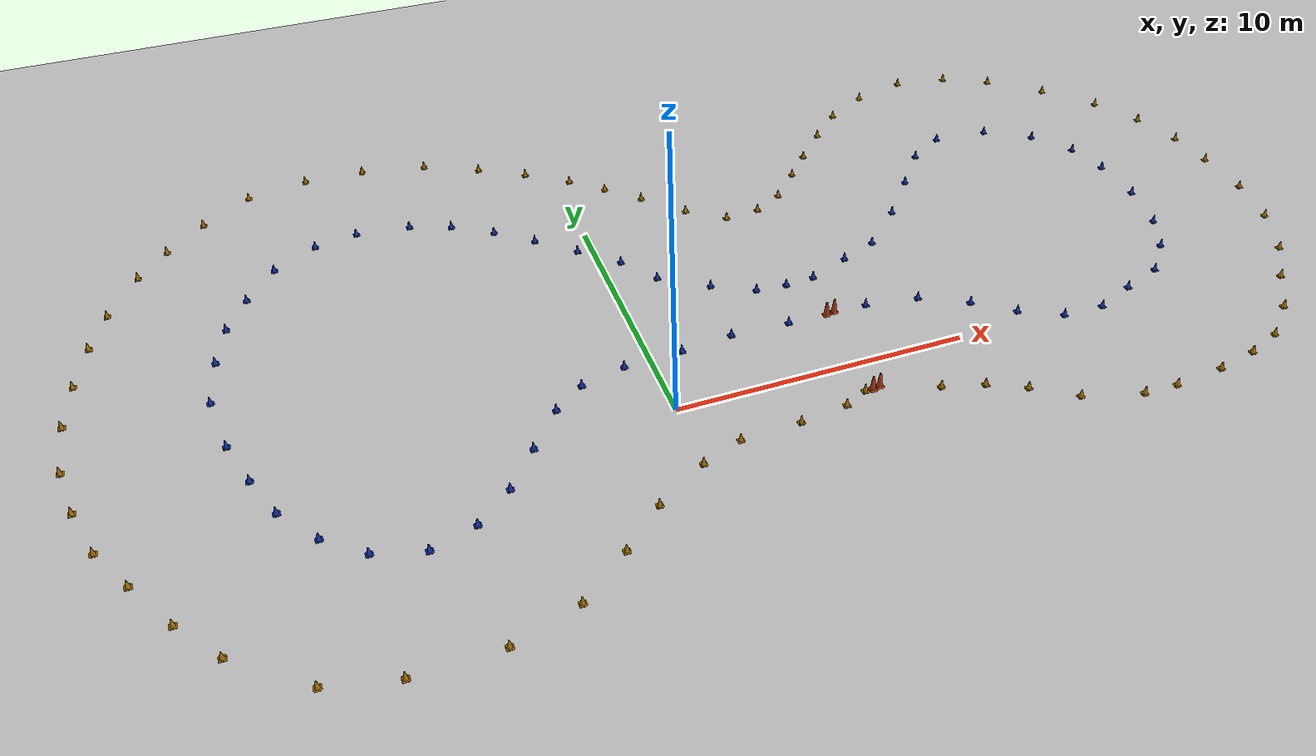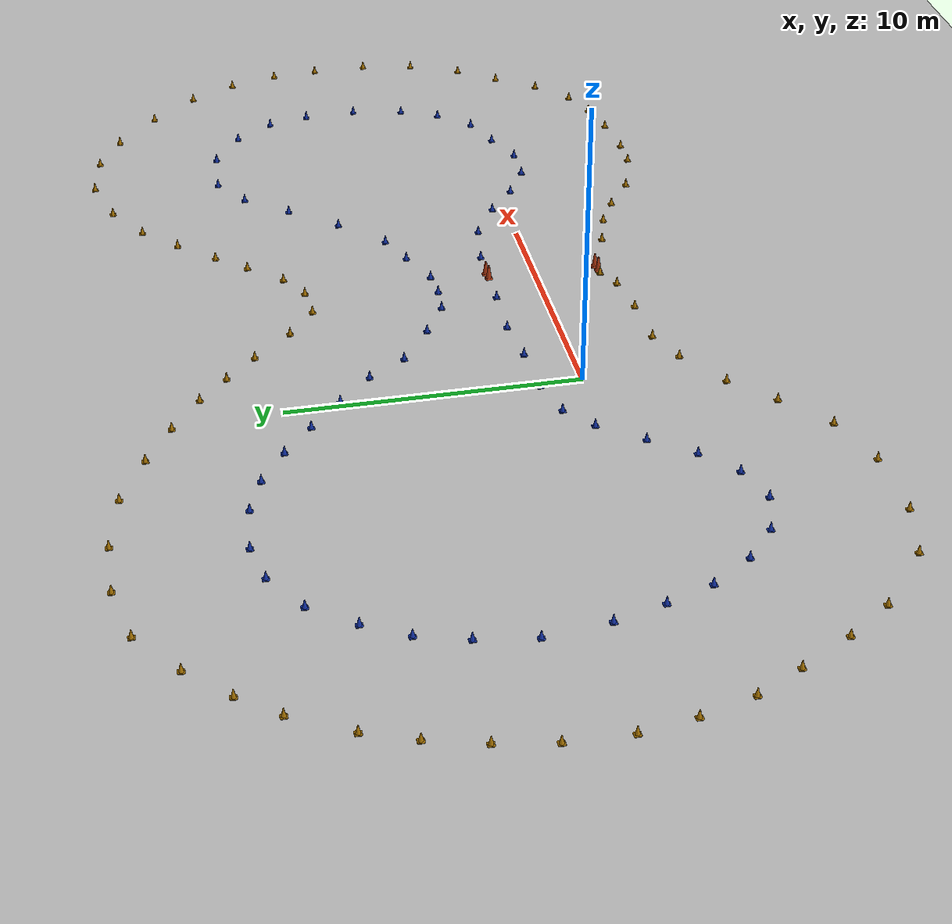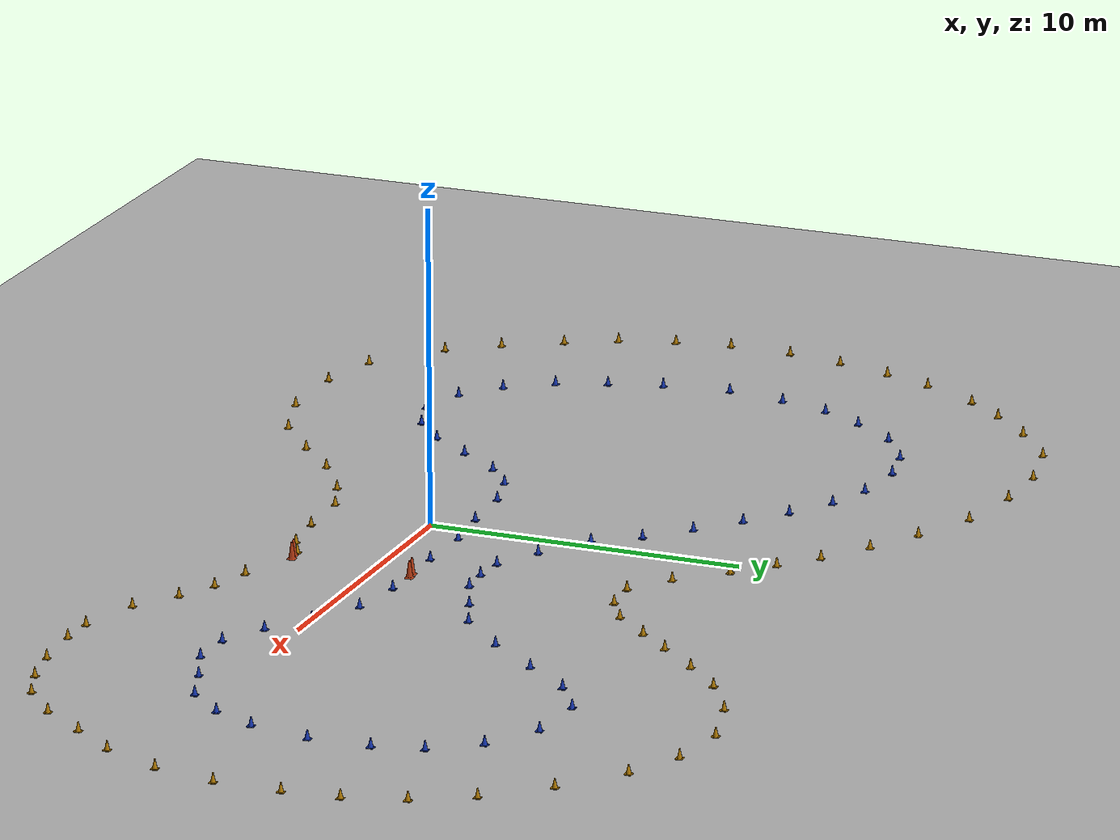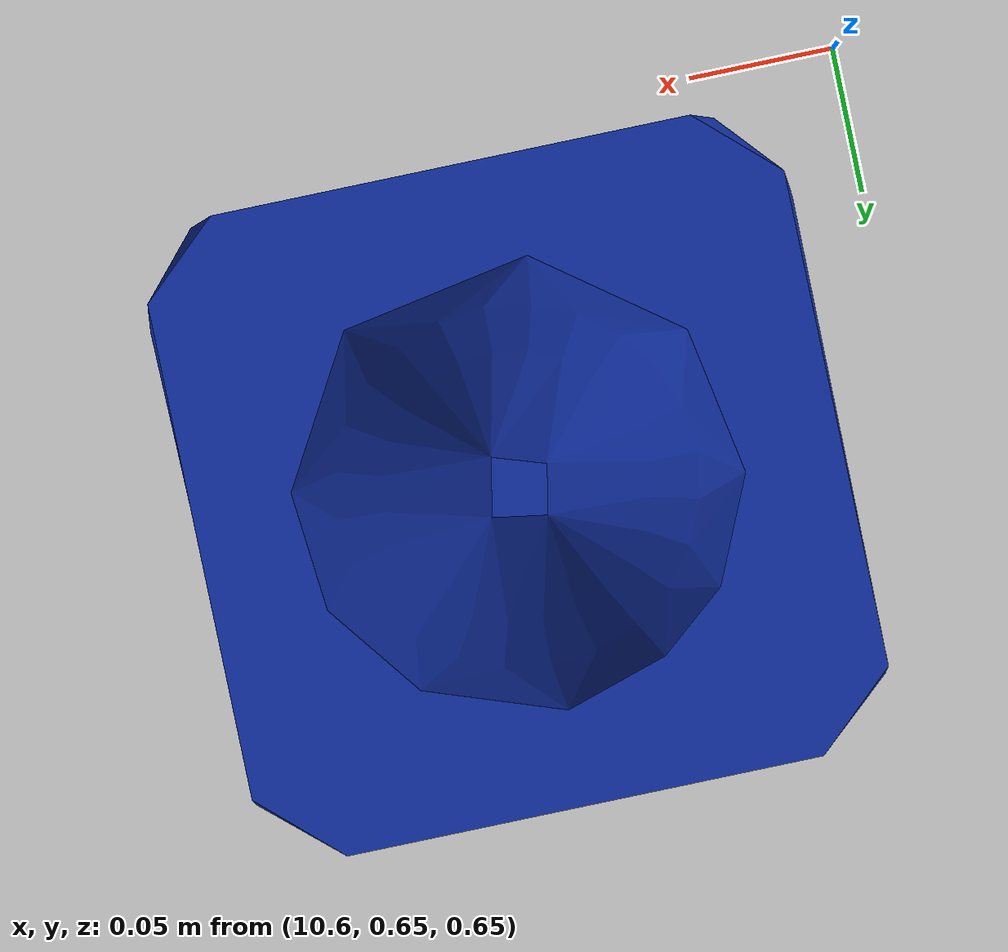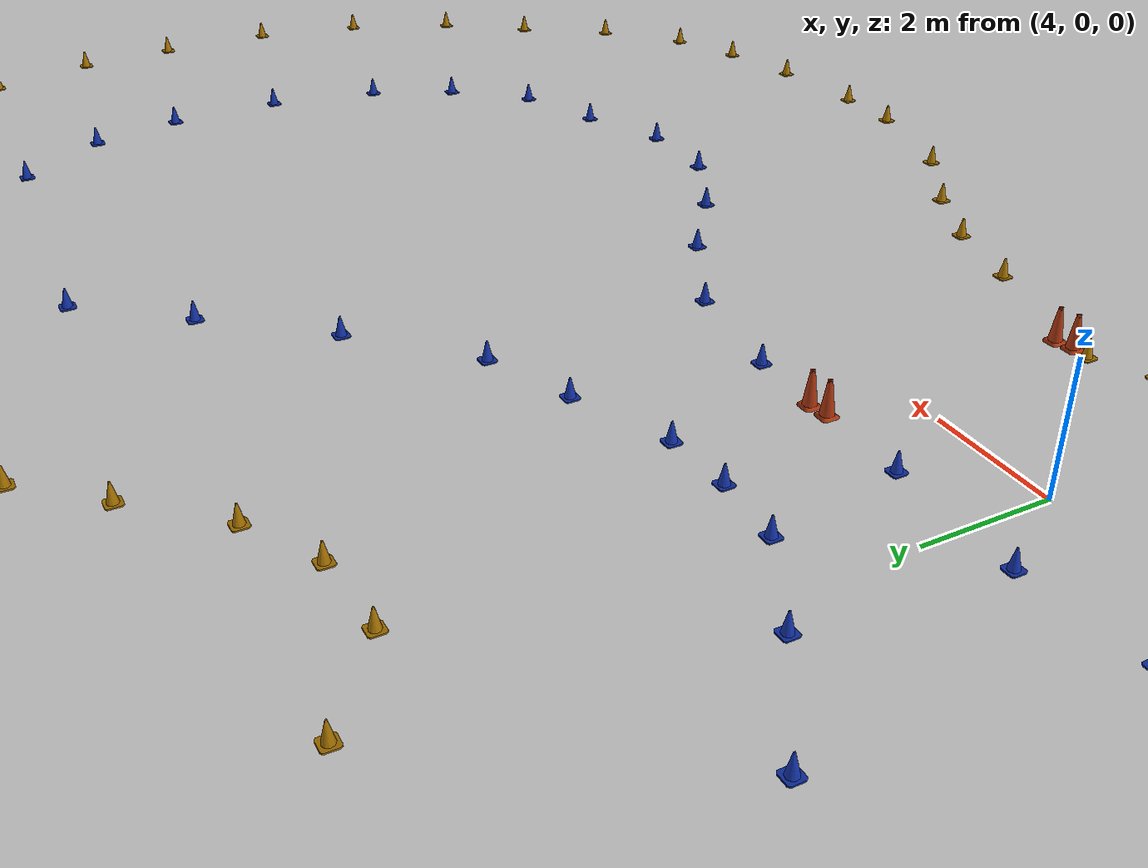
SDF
<sdf version='1.6'>
  <world name='peanut'>
    <gui fullscreen='0'>
      <camera name='user_camera'>
        <pose frame=''>-40 40 20 0 0.667643 -1</pose>
        <view_controller>orbit</view_controller>
        <projection_type>perspective</projection_type>
      </camera>
    </gui>

    <!-- WORLD SETTINGS -->
    <scene>
      <ambient>1.0 1.0 1.0 1.0</ambient>
      <shadows>false</shadows>
    </scene>

    <spherical_coordinates>
      <heading_deg>180</heading_deg>

      <!-- Appleton Tower coordinates -->
      <latitude_deg>-27.690733</latitude_deg>
      <longitude_deg>152.656715</longitude_deg>
    </spherical_coordinates>

    <light name='sun' type='directional'>
      <cast_shadows>1</cast_shadows>
      <pose frame=''>0 0 10 0 -0 0</pose>
      <diffuse>0.8 0.8 0.8 1</diffuse>
      <specular>0.1 0.1 0.1 1</specular>
      <attenuation>
        <range>1000</range>
        <constant>0.9</constant>
        <linear>0.01</linear>
        <quadratic>0.001</quadratic>
      </attenuation>
      <direction>-0.5 0.5 -1</direction>
    </light>

    <!-- MODELS -->
    <include>
      <uri>model://ground_plane</uri>
      <pose>0.0 0.0 0.0 0 0 0</pose>
    </include>

    <include>
      <uri>model://peanut</uri>
      <pose>0 0 0.5 0 0 0</pose>
    </include>

  </world>
</sdf>

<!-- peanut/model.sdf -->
<sdf version='1.6'>
  <model name='track'>

    <include>
      <pose>4.624631688875545 1.9405307217348955 0.15 0 0 0</pose>
      <uri>model://blue_cone</uri>
      <name>blue_cone_0</name>

      <covariance x="0.000196" y="0.000196" xy="0.0"/>

    </include>

    <include>
      <pose>2.626432609214784 2.00763114521312 0.15 0 0 0</pose>
      <uri>model://blue_cone</uri>
      <name>blue_cone_1</name>

      <covariance x="0.000196" y="0.000196" xy="0.0"/>

    </include>

    <include>
      <pose>0.8573233278844401 1.826582293937786 0.15 0 0 0</pose>
      <uri>model://blue_cone</uri>
      <name>blue_cone_2</name>

      <covariance x="0.000196" y="0.000196" xy="0.0"/>

    </include>

    <include>
      <pose>-1.112031282932214 1.7334566896506296 0.15 0 0 0</pose>
      <uri>model://blue_cone</uri>
      <name>blue_cone_3</name>

      <covariance x="0.000196" y="0.000196" xy="0.0"/>

    </include>

    <include>
      <pose>-2.621188015421736 1.3533588253447526 0.15 0 0 0</pose>
      <uri>model://blue_cone</uri>
      <name>blue_cone_4</name>

      <covariance x="0.000196" y="0.000196" xy="0.0"/>

    </include>

    <include>
      <pose>-3.6646865674613447 0.5391368630523501 0.15 0 0 0</pose>
      <uri>model://blue_cone</uri>
      <name>blue_cone_5</name>

      <covariance x="0.000196" y="0.000196" xy="0.0"/>

    </include>

    <include>
      <pose>-4.738033192496301 -0.8466803006738843 0.15 0 0 0</pose>
      <uri>model://blue_cone</uri>
      <name>blue_cone_6</name>

      <covariance x="0.000196" y="0.000196" xy="0.0"/>

    </include>

    <include>
      <pose>-5.785827854104583 -2.207521901485809 0.15 0 0 0</pose>
      <uri>model://blue_cone</uri>
      <name>blue_cone_7</name>

      <covariance x="0.000196" y="0.000196" xy="0.0"/>

    </include>

    <include>
      <pose>-6.965483226611769 -3.2224772580072893 0.15 0 0 0</pose>
      <uri>model://blue_cone</uri>
      <name>blue_cone_8</name>

      <covariance x="0.000196" y="0.000196" xy="0.0"/>

    </include>

    <include>
      <pose>-8.403479735214036 -3.679552794930029 0.15 0 0 0</pose>
      <uri>model://blue_cone</uri>
      <name>blue_cone_9</name>

      <covariance x="0.000196" y="0.000196" xy="0.0"/>

    </include>

    <include>
      <pose>-9.962541703308132 -3.212989083703485 0.15 0 0 0</pose>
      <uri>model://blue_cone</uri>
      <name>blue_cone_10</name>

      <covariance x="0.000198" y="0.000198" xy="0.0"/>

    </include>

    <include>
      <pose>-11.165427023767524 -2.192065305064733 0.15 0 0 0</pose>
      <uri>model://blue_cone</uri>
      <name>blue_cone_11</name>

      <covariance x="0.000196" y="0.000196" xy="0.0"/>

    </include>

    <include>
      <pose>-12.138615899126686 -0.7957521930654935 0.15 0 0 0</pose>
      <uri>model://blue_cone</uri>
      <name>blue_cone_12</name>

      <covariance x="0.000196" y="0.000196" xy="0.0"/>

    </include>

    <include>
      <pose>-12.713417432475692 0.7634000953775564 0.15 0 0 0</pose>
      <uri>model://blue_cone</uri>
      <name>blue_cone_13</name>

      <covariance x="0.000196" y="0.000196" xy="0.0"/>

    </include>

    <include>
      <pose>-13.19921546828624 2.4515489972689486 0.15 0 0 0</pose>
      <uri>model://blue_cone</uri>
      <name>blue_cone_14</name>

      <covariance x="0.000196" y="0.000196" xy="0.0"/>

    </include>

    <include>
      <pose>-13.475829701664416 4.595631547449973 0.15 0 0 0</pose>
      <uri>model://blue_cone</uri>
      <name>blue_cone_15</name>

      <covariance x="0.000196" y="0.000196" xy="0.0"/>

    </include>

    <include>
      <pose>-13.171311430252697 6.489705358426122 0.15 0 0 0</pose>
      <uri>model://blue_cone</uri>
      <name>blue_cone_16</name>

      <covariance x="0.000196" y="0.000196" xy="0.0"/>

    </include>

    <include>
      <pose>-12.700231455557164 8.093780315235415 0.15 0 0 0</pose>
      <uri>model://blue_cone</uri>
      <name>blue_cone_17</name>

      <covariance x="0.000196" y="0.000196" xy="0.0"/>

    </include>

    <include>
      <pose>-11.912279750804782 9.46688187170461 0.15 0 0 0</pose>
      <uri>model://blue_cone</uri>
      <name>blue_cone_18</name>

      <covariance x="0.000196" y="0.000196" xy="0.0"/>

    </include>

    <include>
      <pose>-10.83946684983572 10.851860134060876 0.15 0 0 0</pose>
      <uri>model://blue_cone</uri>
      <name>blue_cone_19</name>

      <covariance x="0.000196" y="0.000196" xy="0.0"/>

    </include>

    <include>
      <pose>-9.328782518766692 11.765670163452018 0.15 0 0 0</pose>
      <uri>model://blue_cone</uri>
      <name>blue_cone_20</name>

      <covariance x="0.000196" y="0.000196" xy="0.0"/>

    </include>

    <include>
      <pose>-7.839582456874299 12.040615721068352 0.15 0 0 0</pose>
      <uri>model://blue_cone</uri>
      <name>blue_cone_21</name>

      <covariance x="0.000196" y="0.000196" xy="0.0"/>

    </include>

    <include>
      <pose>-5.98169072257966 11.821251519572003 0.15 0 0 0</pose>
      <uri>model://blue_cone</uri>
      <name>blue_cone_22</name>

      <covariance x="0.000196" y="0.000196" xy="0.0"/>

    </include>

    <include>
      <pose>-4.568888023928388 11.29129620847962 0.15 0 0 0</pose>
      <uri>model://blue_cone</uri>
      <name>blue_cone_23</name>

      <covariance x="0.000196" y="0.000196" xy="0.0"/>

    </include>

    <include>
      <pose>-3.2188159769702045 10.39248924126546 0.15 0 0 0</pose>
      <uri>model://blue_cone</uri>
      <name>blue_cone_24</name>

      <covariance x="0.000196" y="0.000196" xy="0.0"/>

    </include>

    <include>
      <pose>-1.9878404584206752 9.3700759062441 0.15 0 0 0</pose>
      <uri>model://blue_cone</uri>
      <name>blue_cone_25</name>

      <covariance x="0.000196" y="0.000196" xy="0.0"/>

    </include>

    <include>
      <pose>-0.7400870414615586 8.24331746104806 0.15 0 0 0</pose>
      <uri>model://blue_cone</uri>
      <name>blue_cone_26</name>

      <covariance x="0.000196" y="0.000196" xy="0.0"/>

    </include>

    <include>
      <pose>0.483694433890684 7.082699382531337 0.15 0 0 0</pose>
      <uri>model://blue_cone</uri>
      <name>blue_cone_27</name>

      <covariance x="0.000196" y="0.000196" xy="0.0"/>

    </include>

    <include>
      <pose>1.3692608451230892 5.775505263820311 0.15 0 0 0</pose>
      <uri>model://blue_cone</uri>
      <name>blue_cone_28</name>

      <covariance x="0.000196" y="0.000196" xy="0.0"/>

    </include>

    <include>
      <pose>2.924095647598875 4.70652161806575 0.15 0 0 0</pose>
      <uri>model://blue_cone</uri>
      <name>blue_cone_29</name>

      <covariance x="0.000196" y="0.000196" xy="0.0"/>

    </include>

    <include>
      <pose>4.294927303708031 3.941512680310528 0.15 0 0 0</pose>
      <uri>model://blue_cone</uri>
      <name>blue_cone_30</name>

      <covariance x="0.000196" y="0.000196" xy="0.0"/>

    </include>

    <include>
      <pose>5.352331093555156 3.854981632602374 0.15 0 0 0</pose>
      <uri>model://blue_cone</uri>
      <name>blue_cone_31</name>

      <covariance x="0.000196" y="0.000196" xy="0.0"/>

    </include>

    <include>
      <pose>6.382724861731829 3.9252213159771143 0.15 0 0 0</pose>
      <uri>model://blue_cone</uri>
      <name>blue_cone_32</name>

      <covariance x="0.000196" y="0.000196" xy="0.0"/>

    </include>

    <include>
      <pose>7.841265752601872 4.524371206512453 0.15 0 0 0</pose>
      <uri>model://blue_cone</uri>
      <name>blue_cone_33</name>

      <covariance x="0.000196" y="0.000196" xy="0.0"/>

    </include>

    <include>
      <pose>9.161857020719175 5.050184608413412 0.15 0 0 0</pose>
      <uri>model://blue_cone</uri>
      <name>blue_cone_34</name>

      <covariance x="0.000196" y="0.000196" xy="0.0"/>

    </include>

    <include>
      <pose>10.685253228108898 6.52004368097499 0.15 0 0 0</pose>
      <uri>model://blue_cone</uri>
      <name>blue_cone_35</name>

      <covariance x="0.000196" y="0.000196" xy="0.0"/>

    </include>

    <include>
      <pose>12.044279632884198 8.152627085495595 0.15 0 0 0</pose>
      <uri>model://blue_cone</uri>
      <name>blue_cone_36</name>

      <covariance x="0.000196" y="0.000196" xy="0.0"/>

    </include>

    <include>
      <pose>13.25010428481547 9.633086101382773 0.15 0 0 0</pose>
      <uri>model://blue_cone</uri>
      <name>blue_cone_37</name>

      <covariance x="0.000196" y="0.000196" xy="0.0"/>

    </include>

    <include>
      <pose>14.616432878989052 10.471529055508414 0.15 0 0 0</pose>
      <uri>model://blue_cone</uri>
      <name>blue_cone_38</name>

      <covariance x="0.000196" y="0.000196" xy="0.0"/>

    </include>

    <include>
      <pose>16.63663429663179 10.30247568487576 0.15 0 0 0</pose>
      <uri>model://blue_cone</uri>
      <name>blue_cone_39</name>

      <covariance x="0.000196" y="0.000196" xy="0.0"/>

    </include>

    <include>
      <pose>18.207959651607062 9.286948681592085 0.15 0 0 0</pose>
      <uri>model://blue_cone</uri>
      <name>blue_cone_40</name>

      <covariance x="0.000196" y="0.000196" xy="0.0"/>

    </include>

    <include>
      <pose>19.19237253648675 7.902201244068864 0.15 0 0 0</pose>
      <uri>model://blue_cone</uri>
      <name>blue_cone_41</name>

      <covariance x="0.000196" y="0.000196" xy="0.0"/>

    </include>

    <include>
      <pose>19.56128698194828 6.415916236691957 0.15 0 0 0</pose>
      <uri>model://blue_cone</uri>
      <name>blue_cone_42</name>

      <covariance x="0.000196" y="0.000196" xy="0.0"/>

    </include>

    <include>
      <pose>19.63259821066259 4.524184126583675 0.15 0 0 0</pose>
      <uri>model://blue_cone</uri>
      <name>blue_cone_43</name>

      <covariance x="0.000196" y="0.000196" xy="0.0"/>

    </include>

    <include>
      <pose>19.286562021135964 2.6571186765645938 0.15 0 0 0</pose>
      <uri>model://blue_cone</uri>
      <name>blue_cone_44</name>

      <covariance x="0.000196" y="0.000196" xy="0.0"/>

    </include>

    <include>
      <pose>18.64400171131068 1.298107313172245 0.15 0 0 0</pose>
      <uri>model://blue_cone</uri>
      <name>blue_cone_45</name>

      <covariance x="0.000196" y="0.000196" xy="0.0"/>

    </include>

    <include>
      <pose>17.613182187959865 0.1660765118671262 0.15 0 0 0</pose>
      <uri>model://blue_cone</uri>
      <name>blue_cone_46</name>

      <covariance x="0.000196" y="0.000196" xy="0.0"/>

    </include>

    <include>
      <pose>16.165041519032624 -0.3664045198231451 0.15 0 0 0</pose>
      <uri>model://blue_cone</uri>
      <name>blue_cone_47</name>

      <covariance x="0.000196" y="0.000196" xy="0.0"/>

    </include>

    <include>
      <pose>14.765943146180987 -0.9460611044904712 0.15 0 0 0</pose>
      <uri>model://blue_cone</uri>
      <name>blue_cone_48</name>

      <covariance x="0.000196" y="0.000196" xy="0.0"/>

    </include>

    <include>
      <pose>13.329072501905651 -0.9084122957697698 0.15 0 0 0</pose>
      <uri>model://blue_cone</uri>
      <name>blue_cone_49</name>

      <covariance x="0.000196" y="0.000196" xy="0.0"/>

    </include>

    <include>
      <pose>11.96966555166994 -0.1801536578881954 0.15 0 0 0</pose>
      <uri>model://blue_cone</uri>
      <name>blue_cone_50</name>

      <covariance x="0.000196" y="0.000196" xy="0.0"/>

    </include>

    <include>
      <pose>10.73646052745471 0.7744076044947217 0.15 0 0 0</pose>
      <uri>model://blue_cone</uri>
      <name>blue_cone_51</name>

      <covariance x="0.000196" y="0.000196" xy="0.0"/>

    </include>

    <include>
      <pose>9.206290948682328 1.6272651346632518 0.15 0 0 0</pose>
      <uri>model://blue_cone</uri>
      <name>blue_cone_52</name>

      <covariance x="0.000196" y="0.000196" xy="0.0"/>

    </include>

    <include>
      <pose>7.401248096290233 1.9111549514525064 0.15 0 0 0</pose>
      <uri>model://blue_cone</uri>
      <name>blue_cone_53</name>

      <covariance x="0.000196" y="0.000196" xy="0.0"/>

    </include>

    <include>
      <pose>4.705146821928112 -2.3756344106621983 0.15 0 0 0</pose>
      <uri>model://yellow_cone</uri>
      <name>yellow_cone_54</name>

      <covariance x="0.000196" y="0.000196" xy="0.0"/>

    </include>

    <include>
      <pose>3.09902094703056 -2.581822998619669 0.15 0 0 0</pose>
      <uri>model://yellow_cone</uri>
      <name>yellow_cone_55</name>

      <covariance x="0.000196" y="0.000196" xy="0.0"/>

    </include>

    <include>
      <pose>1.1094121724149195 -2.656558252294417 0.15 0 0 0</pose>
      <uri>model://yellow_cone</uri>
      <name>yellow_cone_56</name>

      <covariance x="0.000196" y="0.000196" xy="0.0"/>

    </include>

    <include>
      <pose>-0.2710523874502893 -3.194019267386174 0.15 0 0 0</pose>
      <uri>model://yellow_cone</uri>
      <name>yellow_cone_57</name>

      <covariance x="0.000196" y="0.000196" xy="0.0"/>

    </include>

    <include>
      <pose>-2.001525557151355 -4.298521657624353 0.15 0 0 0</pose>
      <uri>model://yellow_cone</uri>
      <name>yellow_cone_58</name>

      <covariance x="0.000196" y="0.000196" xy="0.0"/>

    </include>

    <include>
      <pose>-3.392637934561761 -5.586259677537774 0.15 0 0 0</pose>
      <uri>model://yellow_cone</uri>
      <name>yellow_cone_59</name>

      <covariance x="0.000196" y="0.000196" xy="0.0"/>

    </include>

    <include>
      <pose>-5.026610003447421 -6.90543496203549 0.15 0 0 0</pose>
      <uri>model://yellow_cone</uri>
      <name>yellow_cone_60</name>

      <covariance x="0.000196" y="0.000196" xy="0.0"/>

    </include>

    <include>
      <pose>-7.15531642677089 -7.59081773534928 0.15 0 0 0</pose>
      <uri>model://yellow_cone</uri>
      <name>yellow_cone_61</name>

      <covariance x="0.000196" y="0.000196" xy="0.0"/>

    </include>

    <include>
      <pose>-9.806539689217264 -7.6182648804547375 0.15 0 0 0</pose>
      <uri>model://yellow_cone</uri>
      <name>yellow_cone_62</name>

      <covariance x="0.000196" y="0.000196" xy="0.0"/>

    </include>

    <include>
      <pose>-11.891243519272802 -7.111864788183853 0.15 0 0 0</pose>
      <uri>model://yellow_cone</uri>
      <name>yellow_cone_63</name>

      <covariance x="0.000196" y="0.000196" xy="0.0"/>

    </include>

    <include>
      <pose>-14.004174473338615 -5.369214086936336 0.15 0 0 0</pose>
      <uri>model://yellow_cone</uri>
      <name>yellow_cone_64</name>

      <covariance x="0.000196" y="0.000196" xy="0.0"/>

    </include>

    <include>
      <pose>-15.105827161275368 -3.8603822003854713 0.15 0 0 0</pose>
      <uri>model://yellow_cone</uri>
      <name>yellow_cone_65</name>

      <covariance x="0.000196" y="0.000196" xy="0.0"/>

    </include>

    <include>
      <pose>-16.128447489151515 -2.103198086737512 0.15 0 0 0</pose>
      <uri>model://yellow_cone</uri>
      <name>yellow_cone_66</name>

      <covariance x="0.000196" y="0.000196" xy="0.0"/>

    </include>

    <include>
      <pose>-16.970861665094983 -0.5545836573633152 0.15 0 0 0</pose>
      <uri>model://yellow_cone</uri>
      <name>yellow_cone_67</name>

      <covariance x="0.000196" y="0.000196" xy="0.0"/>

    </include>

    <include>
      <pose>-17.50033870253519 1.2220302432295052 0.15 0 0 0</pose>
      <uri>model://yellow_cone</uri>
      <name>yellow_cone_68</name>

      <covariance x="0.000196" y="0.000196" xy="0.0"/>

    </include>

    <include>
      <pose>-17.796263985895415 3.008357531687632 0.15 0 0 0</pose>
      <uri>model://yellow_cone</uri>
      <name>yellow_cone_69</name>

      <covariance x="0.000196" y="0.000196" xy="0.0"/>

    </include>

    <include>
      <pose>-17.740135432169325 5.049606368831388 0.15 0 0 0</pose>
      <uri>model://yellow_cone</uri>
      <name>yellow_cone_70</name>

      <covariance x="0.000196" y="0.000196" xy="0.0"/>

    </include>

    <include>
      <pose>-17.4108762116791 6.872473731885091 0.15 0 0 0</pose>
      <uri>model://yellow_cone</uri>
      <name>yellow_cone_71</name>

      <covariance x="0.000196" y="0.000196" xy="0.0"/>

    </include>

    <include>
      <pose>-16.915117327346554 8.64720796270265 0.15 0 0 0</pose>
      <uri>model://yellow_cone</uri>
      <name>yellow_cone_72</name>

      <covariance x="0.000196" y="0.000196" xy="0.0"/>

    </include>

    <include>
      <pose>-16.302886641199027 10.218211652178384 0.15 0 0 0</pose>
      <uri>model://yellow_cone</uri>
      <name>yellow_cone_73</name>

      <covariance x="0.000196" y="0.000196" xy="0.0"/>

    </include>

    <include>
      <pose>-15.258669621339168 12.05163426975841 0.15 0 0 0</pose>
      <uri>model://yellow_cone</uri>
      <name>yellow_cone_74</name>

      <covariance x="0.000196" y="0.000196" xy="0.0"/>

    </include>

    <include>
      <pose>-14.23389320808069 13.272487062696312 0.15 0 0 0</pose>
      <uri>model://yellow_cone</uri>
      <name>yellow_cone_75</name>

      <covariance x="0.000196" y="0.000196" xy="0.0"/>

    </include>

    <include>
      <pose>-12.901652980660002 14.55047412998042 0.15 0 0 0</pose>
      <uri>model://yellow_cone</uri>
      <name>yellow_cone_76</name>

      <covariance x="0.000196" y="0.000196" xy="0.0"/>

    </include>

    <include>
      <pose>-11.19651297235422 15.768833538738503 0.15 0 0 0</pose>
      <uri>model://yellow_cone</uri>
      <name>yellow_cone_77</name>

      <covariance x="0.000196" y="0.000196" xy="0.0"/>

    </include>

    <include>
      <pose>-9.077558370089696 16.169887947214225 0.15 0 0 0</pose>
      <uri>model://yellow_cone</uri>
      <name>yellow_cone_78</name>

      <covariance x="0.000196" y="0.000196" xy="0.0"/>

    </include>

    <include>
      <pose>-6.96881677928551 16.09129990061983 0.15 0 0 0</pose>
      <uri>model://yellow_cone</uri>
      <name>yellow_cone_79</name>

      <covariance x="0.000196" y="0.000196" xy="0.0"/>

    </include>

    <include>
      <pose>-4.694588493161887 15.617891315665505 0.15 0 0 0</pose>
      <uri>model://yellow_cone</uri>
      <name>yellow_cone_80</name>

      <covariance x="0.000196" y="0.000196" xy="0.0"/>

    </include>

    <include>
      <pose>-2.791687532968256 14.66737981122567 0.15 0 0 0</pose>
      <uri>model://yellow_cone</uri>
      <name>yellow_cone_81</name>

      <covariance x="0.000196" y="0.000196" xy="0.0"/>

    </include>

    <include>
      <pose>-1.2091215008092857 13.702174169531782 0.15 0 0 0</pose>
      <uri>model://yellow_cone</uri>
      <name>yellow_cone_82</name>

      <covariance x="0.000196" y="0.000196" xy="0.0"/>

    </include>

    <include>
      <pose>0.2292019878629633 12.67069892163715 0.15 0 0 0</pose>
      <uri>model://yellow_cone</uri>
      <name>yellow_cone_83</name>

      <covariance x="0.000196" y="0.000196" xy="0.0"/>

    </include>

    <include>
      <pose>1.31351587009695 11.674658925302804 0.15 0 0 0</pose>
      <uri>model://yellow_cone</uri>
      <name>yellow_cone_84</name>

      <covariance x="0.000196" y="0.000196" xy="0.0"/>

    </include>

    <include>
      <pose>2.3971389346059127 10.61476031234839 0.15 0 0 0</pose>
      <uri>model://yellow_cone</uri>
      <name>yellow_cone_85</name>

      <covariance x="0.000196" y="0.000196" xy="0.0"/>

    </include>

    <include>
      <pose>3.6581473539920486 9.263907469410505 0.15 0 0 0</pose>
      <uri>model://yellow_cone</uri>
      <name>yellow_cone_86</name>

      <covariance x="0.000196" y="0.000196" xy="0.0"/>

    </include>

    <include>
      <pose>4.903840554123255 8.318535384961704 0.15 0 0 0</pose>
      <uri>model://yellow_cone</uri>
      <name>yellow_cone_87</name>

      <covariance x="0.000196" y="0.000196" xy="0.0"/>

    </include>

    <include>
      <pose>6.148050241831177 8.40485216455479 0.15 0 0 0</pose>
      <uri>model://yellow_cone</uri>
      <name>yellow_cone_88</name>

      <covariance x="0.000196" y="0.000196" xy="0.0"/>

    </include>

    <include>
      <pose>7.217652052021406 9.005671684359621 0.15 0 0 0</pose>
      <uri>model://yellow_cone</uri>
      <name>yellow_cone_89</name>

      <covariance x="0.000196" y="0.000196" xy="0.0"/>

    </include>

    <include>
      <pose>8.272933752426894 10.142815405309936 0.15 0 0 0</pose>
      <uri>model://yellow_cone</uri>
      <name>yellow_cone_90</name>

      <covariance x="0.000196" y="0.000196" xy="0.0"/>

    </include>

    <include>
      <pose>9.189423755522071 11.168209769159075 0.15 0 0 0</pose>
      <uri>model://yellow_cone</uri>
      <name>yellow_cone_91</name>

      <covariance x="0.000196" y="0.000196" xy="0.0"/>

    </include>

    <include>
      <pose>10.337770639187408 12.405495551596546 0.15 0 0 0</pose>
      <uri>model://yellow_cone</uri>
      <name>yellow_cone_92</name>

      <covariance x="0.000196" y="0.000196" xy="0.0"/>

    </include>

    <include>
      <pose>11.5396207546024 13.558391875187535 0.15 0 0 0</pose>
      <uri>model://yellow_cone</uri>
      <name>yellow_cone_93</name>

      <covariance x="0.000196" y="0.000196" xy="0.0"/>

    </include>

    <include>
      <pose>13.166026259918375 14.502209496722935 0.15 0 0 0</pose>
      <uri>model://yellow_cone</uri>
      <name>yellow_cone_94</name>

      <covariance x="0.000196" y="0.000196" xy="0.0"/>

    </include>

    <include>
      <pose>15.195367738510535 15.018842717392143 0.15 0 0 0</pose>
      <uri>model://yellow_cone</uri>
      <name>yellow_cone_95</name>

      <covariance x="0.000196" y="0.000196" xy="0.0"/>

    </include>

    <include>
      <pose>17.15699718168617 14.695869336782271 0.15 0 0 0</pose>
      <uri>model://yellow_cone</uri>
      <name>yellow_cone_96</name>

      <covariance x="0.000196" y="0.000196" xy="0.0"/>

    </include>

    <include>
      <pose>18.79668087066088 13.820486143931069 0.15 0 0 0</pose>
      <uri>model://yellow_cone</uri>
      <name>yellow_cone_97</name>

      <covariance x="0.000196" y="0.000196" xy="0.0"/>

    </include>

    <include>
      <pose>20.538925919150124 12.32974873593026 0.15 0 0 0</pose>
      <uri>model://yellow_cone</uri>
      <name>yellow_cone_98</name>

      <covariance x="0.000196" y="0.000196" xy="0.0"/>

    </include>

    <include>
      <pose>22.010176639901857 10.647392837888024 0.15 0 0 0</pose>
      <uri>model://yellow_cone</uri>
      <name>yellow_cone_99</name>

      <covariance x="0.000196" y="0.000196" xy="0.0"/>

    </include>

    <include>
      <pose>22.92478123646552 8.96450578639518 0.15 0 0 0</pose>
      <uri>model://yellow_cone</uri>
      <name>yellow_cone_100</name>

      <covariance x="0.000196" y="0.000196" xy="0.0"/>

    </include>

    <include>
      <pose>23.458262708194965 7.185973601132426 0.15 0 0 0</pose>
      <uri>model://yellow_cone</uri>
      <name>yellow_cone_101</name>

      <covariance x="0.000196" y="0.000196" xy="0.0"/>

    </include>

    <include>
      <pose>23.62124505049671 5.4829597425896885 0.15 0 0 0</pose>
      <uri>model://yellow_cone</uri>
      <name>yellow_cone_102</name>

      <covariance x="0.000196" y="0.000196" xy="0.0"/>

    </include>

    <include>
      <pose>23.65727668894056 3.462088859150759 0.15 0 0 0</pose>
      <uri>model://yellow_cone</uri>
      <name>yellow_cone_103</name>

      <covariance x="0.000196" y="0.000196" xy="0.0"/>

    </include>

    <include>
      <pose>23.297311446810493 1.538521543817897 0.15 0 0 0</pose>
      <uri>model://yellow_cone</uri>
      <name>yellow_cone_104</name>

      <covariance x="0.000196" y="0.000196" xy="0.0"/>

    </include>

    <include>
      <pose>22.48496797034196 -0.2949843450156446 0.15 0 0 0</pose>
      <uri>model://yellow_cone</uri>
      <name>yellow_cone_105</name>

      <covariance x="0.000196" y="0.000196" xy="0.0"/>

    </include>

    <include>
      <pose>21.442616731482687 -1.6680771961272407 0.15 0 0 0</pose>
      <uri>model://yellow_cone</uri>
      <name>yellow_cone_106</name>

      <covariance x="0.000196" y="0.000196" xy="0.0"/>

    </include>

    <include>
      <pose>20.421949825778405 -3.0942659806431583 0.15 0 0 0</pose>
      <uri>model://yellow_cone</uri>
      <name>yellow_cone_107</name>

      <covariance x="0.000196" y="0.000196" xy="0.0"/>

    </include>

    <include>
      <pose>19.17901379281598 -4.195823474406415 0.15 0 0 0</pose>
      <uri>model://yellow_cone</uri>
      <name>yellow_cone_108</name>

      <covariance x="0.000196" y="0.000196" xy="0.0"/>

    </include>

    <include>
      <pose>17.937066428836474 -4.681255105910013 0.15 0 0 0</pose>
      <uri>model://yellow_cone</uri>
      <name>yellow_cone_109</name>

      <covariance x="0.000196" y="0.000196" xy="0.0"/>

    </include>

    <include>
      <pose>16.483959178084678 -4.998110094743511 0.15 0 0 0</pose>
      <uri>model://yellow_cone</uri>
      <name>yellow_cone_110</name>

      <covariance x="0.000196" y="0.000196" xy="0.0"/>

    </include>

    <include>
      <pose>14.72085612985176 -5.164413482084297 0.15 0 0 0</pose>
      <uri>model://yellow_cone</uri>
      <name>yellow_cone_111</name>

      <covariance x="0.000196" y="0.000196" xy="0.0"/>

    </include>

    <include>
      <pose>13.550531466734856 -5.134334834783209 0.15 0 0 0</pose>
      <uri>model://yellow_cone</uri>
      <name>yellow_cone_112</name>

      <covariance x="0.000196" y="0.000196" xy="0.0"/>

    </include>

    <include>
      <pose>11.62766255535181 -4.547827399013793 0.15 0 0 0</pose>
      <uri>model://yellow_cone</uri>
      <name>yellow_cone_113</name>

      <covariance x="0.000196" y="0.000196" xy="0.0"/>

    </include>

    <include>
      <pose>10.323058276431327 -3.645541759190806 0.15 0 0 0</pose>
      <uri>model://yellow_cone</uri>
      <name>yellow_cone_114</name>

      <covariance x="0.000196" y="0.000196" xy="0.0"/>

    </include>

    <include>
      <pose>9.153115087081096 -3.033151737469888 0.15 0 0 0</pose>
      <uri>model://yellow_cone</uri>
      <name>yellow_cone_115</name>

      <covariance x="0.000196" y="0.000196" xy="0.0"/>

    </include>

    <include>
      <pose>7.814017958032448 -2.6396771719337635 0.15 0 0 0</pose>
      <uri>model://yellow_cone</uri>
      <name>yellow_cone_116</name>

      <covariance x="0.000196" y="0.000196" xy="0.0"/>

    </include>

    <include>
      <pose>5.518615736547532 -1.975023411044792 0.15 0 0 0</pose>
      <uri>model://yellow_cone</uri>
      <name>yellow_cone_117</name>

      <covariance x="0.000196" y="0.000196" xy="0.0"/>

    </include>

    <include>
      <pose>6.272590004524751 1.97094196416818 0.15 0 0 0</pose>
      <uri>model://big_cone</uri>
      <name>big_cone_118</name>

      <covariance x="0.000196" y="0.000196" xy="0.0"/>

    </include>

    <include>
      <pose>5.980069809311668 1.9246706335416364 0.15 0 0 0</pose>
      <uri>model://big_cone</uri>
      <name>big_cone_119</name>

      <covariance x="0.000196" y="0.000196" xy="0.0"/>

    </include>

    <include>
      <pose>5.777776442588278 -1.9779226563498085 0.15 0 0 0</pose>
      <uri>model://big_cone</uri>
      <name>big_cone_120</name>

      <covariance x="0.000196" y="0.000196" xy="0.0"/>

    </include>

    <include>
      <pose>6.0413906327322 -1.9176899422308424 0.15 0 0 0</pose>
      <uri>model://big_cone</uri>
      <name>big_cone_121</name>

      <covariance x="0.000196" y="0.000196" xy="0.0"/>

    </include>

    <static>0</static>
    <allow_auto_disable>1</allow_auto_disable>
  </model>
</sdf>

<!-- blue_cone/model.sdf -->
<sdf version='1.6'>
  <model name='blue_cone'>
    <link name='link'>
      <pose frame=''>0 0 0 0 0 0</pose>
      <inertial>
        <inertia>
          <ixx>0.0016</ixx>
          <ixy>0</ixy>
          <ixz>0</ixz>
          <iyy>0.0016</iyy>
          <iyz>0</iyz>
          <izz>0.0010</izz>
        </inertia>
        <mass>0.45</mass>
      </inertial>
      <visual name='visual'>
        <geometry>
          <mesh>
            <uri>model://cone_blue.dae</uri>
          </mesh>
        </geometry>
        <cast_shadows>1</cast_shadows>
      </visual>
      <collision name='collision'>
        <max_contacts>3</max_contacts>
        <geometry>
          <mesh>
            <uri>model://cone_blue.dae</uri>
          </mesh>
        </geometry>
      </collision>
    </link>
  </model>
</sdf>

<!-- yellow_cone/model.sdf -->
<sdf version='1.6'>
  <model name='yellow_cone'>
    <link name='link'>
      <pose frame=''>0 0 0 0 0 0</pose>
      <inertial>
        <inertia>
          <ixx>0.0016</ixx>
          <ixy>0</ixy>
          <ixz>0</ixz>
          <iyy>0.0016</iyy>
          <iyz>0</iyz>
          <izz>0.0010</izz>
        </inertia>
        <mass>0.45</mass>
      </inertial>
      <visual name='visual'>
        <geometry>
          <mesh>
            <uri>model://cone_yellow.dae</uri>
          </mesh>
        </geometry>
        <cast_shadows>1</cast_shadows>
      </visual>
      <collision name='collision'>
        <max_contacts>3</max_contacts>
        <geometry>
          <mesh>
            <uri>model://cone_yellow.dae</uri>
          </mesh>
        </geometry>
      </collision>
    </link>
  </model>
</sdf>

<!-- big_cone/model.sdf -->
<sdf version='1.6'>
  <model name='big_cone'>
    <link name='link'>
      <pose frame=''>0 0 0 0 0 0</pose>
      <inertial>
        <inertia>
          <ixx>0.0016</ixx>
          <ixy>0</ixy>
          <ixz>0</ixz>
          <iyy>0.0016</iyy>
          <iyz>0</iyz>
          <izz>0.0010</izz>
        </inertia>
        <mass>0.45</mass>
      </inertial>
      <visual name='visual'>
        <geometry>
          <mesh>
            <uri>model://cone_big.dae</uri>
          </mesh>
        </geometry>
        <cast_shadows>1</cast_shadows>
      </visual>
      <collision name='collision'>
        <max_contacts>3</max_contacts>
        <geometry>
          <mesh>
            <uri>model://cone_big.dae</uri>
          </mesh>
        </geometry>
      </collision>
    </link>
  </model>
</sdf>
